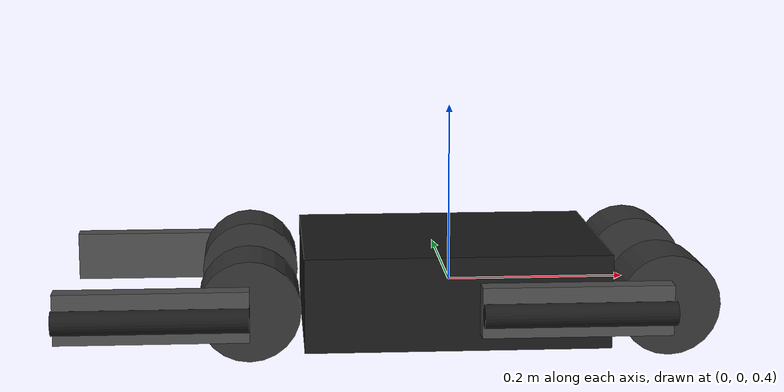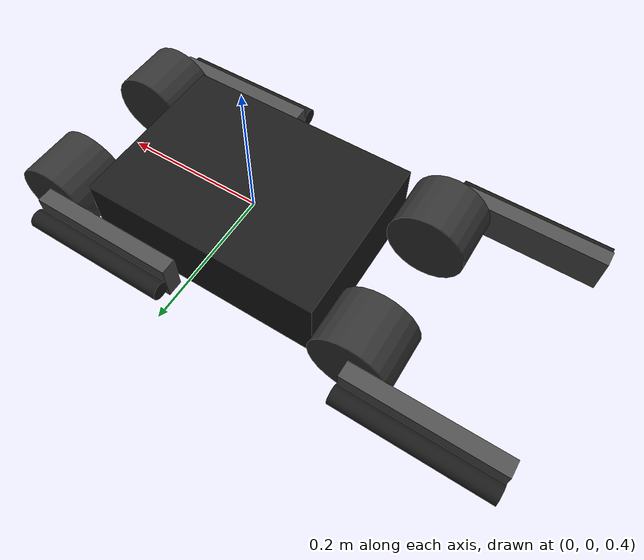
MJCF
<mujoco model="spirit">

  <option cone="elliptic" impratio="100"/>

  <default>
    <default class="spirit">
      <geom friction="0.4" margin="0.001" condim="1"/>
      <joint axis="0 -1 0" damping="0.0" armature="0.01" frictionloss="0.0"/>
      <motor ctrlrange="-21 21"/>
      <default class="abduction">
        <joint axis="1 0 0" range="-0.707 0.707"/>
      </default>
      <default class="hip">
        <default class="front_hip">
          <joint range="-1.57 3.14"/>
        </default>
        <default class="back_hip">
          <joint range="-3.14 1.57"/>
        </default>
      </default>
      <default class="knee">
        <joint axis="0 1 0" range="-6.28 6.28"/>
        <motor ctrlrange="-32 32"/>
      </default>
      <default class="visual">
        <geom type="mesh" contype="0" conaffinity="0" group="2"/>
      </default>
      <default class="collision">
        <geom group="3"/>
        <default class="foot">
          <geom type="sphere" size="0.02" priority="1" condim="6"
            friction="0.5 0.02 0.01"/>
        </default>
      </default>
    </default>
  </default>

  <asset>
    <material name="darkgray" rgba="0.1 0.1 0.1 1"/>
    <material name="gray"     rgba="0.2 0.2 0.2 1"/>
    <material name="silver"   rgba="0.3 0.3 0.3 1"/>
  </asset>

  <worldbody>
    <body name="body" pos="0 0 0.4" childclass="spirit">
      <inertial pos="0 0 0" mass="7.388"
        diaginertia="0.0642434782 0.1284869565 0.1284869565"/>
      <freejoint name="floating_base"/>
      <geom size="0.1675 0.12 0.052" type="box" material="darkgray"/>
      <site name="imu" pos="0 0 0"/>

      <!-- Front-Left leg (hip0 / joints 8, 0, 1) -->
      <body name="hip0" pos="0.2263 0.07 0">
        <inertial pos="0 0.028 0" mass="0.575"
          diaginertia="0.00066963541 0.00066963541 0.0008696875"/>
        <joint name="8" class="abduction"/>
        <geom size="0.055 0.04" pos="0 0.028 0" quat="0.707107 0.707107 0 0"
          type="cylinder" material="gray"/>
        <body name="upper0" pos="0 0.10098 0">
          <inertial pos="-0.040 -0.041 0" mass="0.792"
            diaginertia="0.005 0.0070 0.0070"/>
          <joint name="0" class="front_hip"/>
          <geom size="0.103 0.011 0.0275" pos="-0.103 -0.022 0"
            type="box" material="silver"/>
          <body name="lower0" pos="-0.206 0 0">
            <inertial pos="0.092 0 0" mass="0.096"
              diaginertia="1.3e-05 0.00047 0.00047"/>
            <joint name="1" class="knee"/>
            <geom size="0.013 0.103" pos="0.103 0 0" quat="0.707107 0 0.707107 0"
              type="cylinder" material="darkgray"/>
            <geom name="toe0" pos="0.206 0 0" class="foot"/>
            <body name="toe0" pos="0.206 0 0"/>
          </body>
        </body>
      </body>

      <!-- Rear-Left leg (hip1 / joints 9, 2, 3) -->
      <body name="hip1" pos="-0.2263 0.07 0">
        <inertial pos="0 0.028 0" mass="0.575"
          diaginertia="0.00066963541 0.00066963541 0.0008696875"/>
        <joint name="9" class="abduction"/>
        <geom size="0.055 0.04" pos="0 0.028 0" quat="0.707107 0.707107 0 0"
          type="cylinder" material="gray"/>
        <body name="upper1" pos="0 0.10098 0">
          <inertial pos="-0.040 -0.041 0" mass="0.792"
            diaginertia="0.005 0.0070 0.0070"/>
          <joint name="2" class="back_hip"/>
          <geom size="0.103 0.011 0.0275" pos="-0.103 -0.022 0"
            type="box" material="silver"/>
          <body name="lower1" pos="-0.206 0 0">
            <inertial pos="0.092 0 0" mass="0.096"
              diaginertia="1.3e-05 0.00047 0.00047"/>
            <joint name="3" class="knee"/>
            <geom size="0.013 0.103" pos="0.103 0 0" quat="0.707107 0 0.707107 0"
              type="cylinder" material="darkgray"/>
            <geom name="toe1" pos="0.206 0 0" class="foot"/>
            <body name="toe1" pos="0.206 0 0"/>
          </body>
        </body>
      </body>

      <!-- Front-Right leg (hip2 / joints 10, 4, 5) -->
      <body name="hip2" pos="0.2263 -0.07 0">
        <inertial pos="0 -0.028 0" mass="0.575"
          diaginertia="0.00066963541 0.00066963541 0.0008696875"/>
        <joint name="10" class="abduction"/>
        <geom size="0.055 0.04" pos="0 -0.028 0" quat="0.707107 0.707107 0 0"
          type="cylinder" material="gray"/>
        <body name="upper2" pos="0 -0.10098 0">
          <inertial pos="-0.040 0.041 0" mass="0.792"
            diaginertia="0.005 0.0070 0.0070"/>
          <joint name="4" class="front_hip"/>
          <geom size="0.103 0.011 0.0275" pos="-0.103 0.022 0"
            type="box" material="silver"/>
          <body name="lower2" pos="-0.206 0 0">
            <inertial pos="0.092 0 0" mass="0.096"
              diaginertia="1.3e-05 0.00047 0.00047"/>
            <joint name="5" class="knee"/>
            <geom size="0.013 0.103" pos="0.103 0 0" quat="0.707107 0 0.707107 0"
              type="cylinder" material="darkgray"/>
            <geom name="toe2" pos="0.206 0 0" class="foot"/>
            <body name="toe2" pos="0.206 0 0"/>
          </body>
        </body>
      </body>

      <!-- Rear-Right leg (hip3 / joints 11, 6, 7) -->
      <body name="hip3" pos="-0.2263 -0.07 0">
        <inertial pos="0 -0.028 0" mass="0.575"
          diaginertia="0.00066963541 0.00066963541 0.0008696875"/>
        <joint name="11" class="abduction"/>
        <geom size="0.055 0.04" pos="0 -0.028 0" quat="0.707107 0.707107 0 0"
          type="cylinder" material="gray"/>
        <body name="upper3" pos="0 -0.10098 0">
          <inertial pos="-0.040 0.041 0" mass="0.792"
            diaginertia="0.005 0.0070 0.0070"/>
          <joint name="6" class="back_hip"/>
          <geom size="0.103 0.011 0.0275" pos="-0.103 0.022 0"
            type="box" material="silver"/>
          <body name="lower3" pos="-0.206 0 0">
            <inertial pos="0.092 0 0" mass="0.096"
              diaginertia="1.3e-05 0.00047 0.00047"/>
            <joint name="7" class="knee"/>
            <geom size="0.013 0.103" pos="0.103 0 0" quat="0.707107 0 0.707107 0"
              type="cylinder" material="darkgray"/>
            <geom name="toe3" pos="0.206 0 0" class="foot"/>
            <body name="toe3" pos="0.206 0 0"/>
          </body>
        </body>
      </body>
    </body>
  </worldbody>

  <actuator>
    <motor class="abduction" name="motor_8"  joint="8"/>
    <motor class="hip"       name="motor_0"  joint="0"/>
    <motor class="knee"      name="motor_1"  joint="1"/>
    <motor class="abduction" name="motor_9"  joint="9"/>
    <motor class="hip"       name="motor_2"  joint="2"/>
    <motor class="knee"      name="motor_3"  joint="3"/>
    <motor class="abduction" name="motor_10" joint="10"/>
    <motor class="hip"       name="motor_4"  joint="4"/>
    <motor class="knee"      name="motor_5"  joint="5"/>
    <motor class="abduction" name="motor_11" joint="11"/>
    <motor class="hip"       name="motor_6"  joint="6"/>
    <motor class="knee"      name="motor_7"  joint="7"/>
  </actuator>

  <sensor>
    <jointpos name="pos_8"  joint="8"/>
    <jointpos name="pos_0"  joint="0"/>
    <jointpos name="pos_1"  joint="1"/>
    <jointpos name="pos_9"  joint="9"/>
    <jointpos name="pos_2"  joint="2"/>
    <jointpos name="pos_3"  joint="3"/>
    <jointpos name="pos_10" joint="10"/>
    <jointpos name="pos_4"  joint="4"/>
    <jointpos name="pos_5"  joint="5"/>
    <jointpos name="pos_11" joint="11"/>
    <jointpos name="pos_6"  joint="6"/>
    <jointpos name="pos_7"  joint="7"/>

    <jointvel name="vel_8"  joint="8"/>
    <jointvel name="vel_0"  joint="0"/>
    <jointvel name="vel_1"  joint="1"/>
    <jointvel name="vel_9"  joint="9"/>
    <jointvel name="vel_2"  joint="2"/>
    <jointvel name="vel_3"  joint="3"/>
    <jointvel name="vel_10" joint="10"/>
    <jointvel name="vel_4"  joint="4"/>
    <jointvel name="vel_5"  joint="5"/>
    <jointvel name="vel_11" joint="11"/>
    <jointvel name="vel_6"  joint="6"/>
    <jointvel name="vel_7"  joint="7"/>

    <jointactuatorfrc name="trq_8"  joint="8"  noise="0.01"/>
    <jointactuatorfrc name="trq_0"  joint="0"  noise="0.01"/>
    <jointactuatorfrc name="trq_1"  joint="1"  noise="0.01"/>
    <jointactuatorfrc name="trq_9"  joint="9"  noise="0.01"/>
    <jointactuatorfrc name="trq_2"  joint="2"  noise="0.01"/>
    <jointactuatorfrc name="trq_3"  joint="3"  noise="0.01"/>
    <jointactuatorfrc name="trq_10" joint="10" noise="0.01"/>
    <jointactuatorfrc name="trq_4"  joint="4"  noise="0.01"/>
    <jointactuatorfrc name="trq_5"  joint="5"  noise="0.01"/>
    <jointactuatorfrc name="trq_11" joint="11" noise="0.01"/>
    <jointactuatorfrc name="trq_6"  joint="6"  noise="0.01"/>
    <jointactuatorfrc name="trq_7"  joint="7"  noise="0.01"/>

    <framequat     name="imu_quat" objtype="site" objname="imu"/>
    <gyro          name="imu_gyro" site="imu"/>
    <accelerometer name="imu_acc"  site="imu"/>

    <framepos      name="frame_pos" objtype="site" objname="imu"/>
    <framelinvel   name="frame_vel" objtype="site" objname="imu"/>
  </sensor>

  <keyframe>
    <!-- qpos order: base(7) + [8,0,1, 9,2,3, 10,4,5, 11,6,7]
         standing pose: abduction=0, upper=0.78, knee=1.57 -->
    <key name="home"
      qpos="0 0 0.32 1 0 0 0   0 0.78 1.57   0 0.78 1.57   0 0.78 1.57   0 0.78 1.57"
      ctrl="0 0.78 1.57   0 0.78 1.57   0 0.78 1.57   0 0.78 1.57"/>
  </keyframe>
</mujoco>
